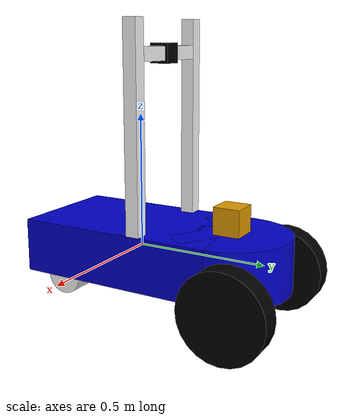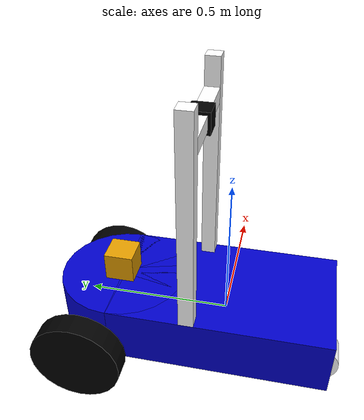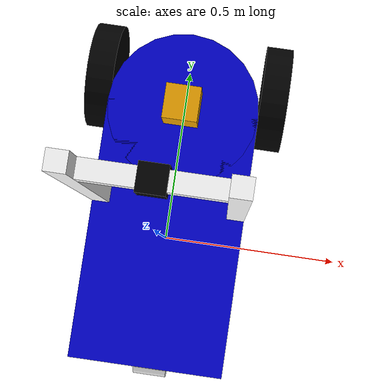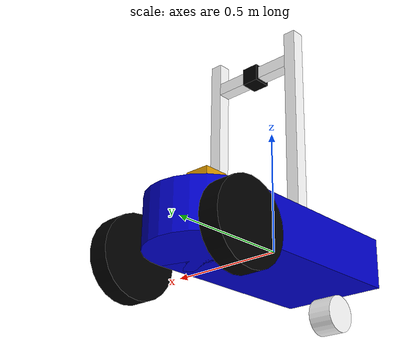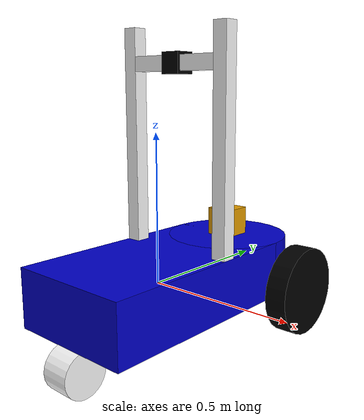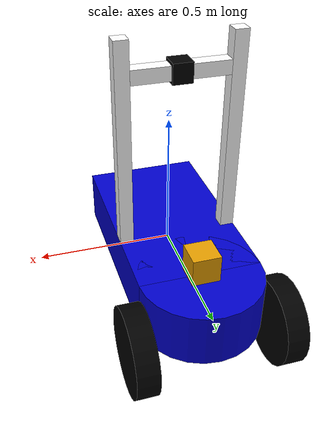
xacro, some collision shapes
<?xml version="1.0"?>
<robot name="Minotaur" xmlns:xacro="http://www.ros.org/wiki/xacro">

	<xacro:include filename="$(find ugv_bot)/ugvbot_description/ugvbot.gazebo" />

	<material name="blue">
		<color rgba="0 0 0.8 1"/>
	</material>
	<material name="black">
		<color rgba="0 0 0 1"/>
	</material>
	<material name="white">
		<color rgba="1 1 1 1"/>
	</material>

	<link name="base_link">
		<visual>
			<geometry>
				<box size="0.44 0.75 0.2"/>
			</geometry>
			<material name="blue"/>
		</visual>
		<collision>
			<geometry>
				<box size="0.44 0.75 0.2"/>
			</geometry>
		</collision>
		<inertial>
			<mass value="10.0"/>
			<origin xyz="0.0 0 0.1" rpy=" 0 0 0"/>
		         <inertia
			  ixx="0.5" ixy="0" ixz="0"
			  iyy="1.0" iyz="0"
			  izz="0.1"
		      />
		</inertial>
	</link>

	<link name="front_end">
		<visual>
			<geometry>
				<cylinder length="0.2" radius="0.22"/>
			</geometry>
			<material name="blue"/>
			<origin xyz="0 0 0"/>
		</visual>
		<collision>
			<geometry>
				<cylinder length="0.2" radius="0.22"/>
			</geometry>
		</collision>
		<inertial>
			<mass value="1.0"/>
			<origin xyz="0.0 0 0.1" rpy=" 0 0 0"/>
		         <inertia
			  ixx="0.5" ixy="0" ixz="0"
			  iyy="1.0" iyz="0"
			  izz="0.1"
		      />
		</inertial>
	</link>

	<joint name="front_base_joint" type="fixed">
		<parent link="base_link"/>
		<child link="front_end"/>
		<origin xyz="0 0.375 0"/>
	</joint>

	<link name="right_wheel">
		<visual>
			<origin rpy="0 1.5708 0" xyz="0 0 0"/>
			<geometry>
				<cylinder length="0.08" radius="0.16"/>
			</geometry>
			<material name="black"/>
		</visual>
		<collision>
			<origin rpy="0 1.5708 0" xyz="0 0 0"/>
			<geometry>
				<cylinder length="0.08" radius="0.16"/>
			</geometry>
			<contact_coefficients mu="1.0" kp="0.01" kd="0.01"/>
		</collision>
		<inertial>
			<mass value="5"/>
			<origin xyz="0.0 0 0.1" rpy=" 0 0 0"/>
		        <inertia
			ixx="1.0" ixy="0.0" ixz="0.0"
			iyy="1.0" iyz="0.0"
			izz="1.0"/>
		</inertial>
	</link>

	<joint name="right_wheel_joint" type="continuous">
		<parent link="front_end"/>
		<child link="right_wheel"/>
		<origin xyz="0.26 0.1 -0.09" rpy="1.5708 0 0"/>
	</joint>

	<link name="left_wheel">
		<visual>
			<origin rpy="0 1.5708 0" xyz="0 0 0"/>
			<geometry>
				<cylinder length="0.08" radius="0.16"/>
			</geometry>
			<material name="black"/>
		</visual>
		<collision>
			<origin rpy="0 1.5708 0" xyz="0 0 0"/>
			<geometry>
				<cylinder length="0.08" radius="0.16"/>
			</geometry>
		</collision>
		<inertial>
			<mass value="5"/>
			<origin xyz="0.0 0 0.1" rpy=" 0 0 0"/>
		     	<inertia
			ixx="1.0" ixy="0.0" ixz="0.0"
			iyy="1.0" iyz="0.0"
			izz="1.0"/>
		</inertial>
	</link>

	<joint name="left_wheel_joint" type="continuous">
		<parent link="front_end"/>
		<child link="left_wheel"/>
		<origin xyz="-0.26 0.1 -0.09" rpy="1.5708 0 0"/>
	</joint>

	<link name="right_mast">
		<visual>
			<geometry>
				<box size="0.05 0.05 0.74"/>
			</geometry>
			<material name="white"/>
		</visual>
		<collision>
			<geometry>
				<box size="0.05 0.05 0.74"/>
			</geometry>
		</collision>
		<inertial>
			<mass value="1"/>
			<origin xyz="0.0 0 0.1" rpy=" 0 0 0"/>
		        <inertia
			  ixx="0.5" ixy="0" ixz="0"
			  iyy="1.0" iyz="0"
			  izz="0.1"
		      />
		</inertial>
	</link>

	<link name="left_mast">
		<visual>
			<geometry>
				<box size="0.05 0.05 0.74"/>
			</geometry>
			<material name="white"/>
		</visual>
		<collision>
			<geometry>
				<box size="0.05 0.05 0.74"/>
			</geometry>
		</collision>
		<inertial>
			<mass value="1"/>
			<origin xyz="0.0 0 0.1" rpy=" 0 0 0"/>
		        <inertia
			  ixx="0.5" ixy="0" ixz="0"
			  iyy="1.0" iyz="0"
			  izz="0.1"
		      />
		</inertial>
	</link>

	<joint name="right_mast_joint" type="fixed">
		<parent link="base_link"/>
		<child link="right_mast"/>
		<origin xyz="0.195 0.1 0.47"/>
	</joint>

	<joint name="left_mast_joint" type="fixed">
		<parent link="base_link"/>
		<child link="left_mast"/>
		<origin xyz="-0.195 0.1 0.47"/>
	</joint>

	<link name="mast_link">
		<visual>
			<geometry>
				<box size="0.34 0.05 0.05"/>
				<origin xyz="0 0 0"/>
			</geometry>
			<material name="white"/>
		</visual>
		<collision>
			<geometry>
				<box size="0.34 0.05 0.05"/>
			</geometry>
		</collision>
		<inertial>
			<mass value="0.1"/>
			<origin xyz="0.0 0 0.1" rpy=" 0 0 0"/>
		        <inertia
			  ixx="1" ixy="0" ixz="0"
			  iyy="1" iyz="0"
			  izz="1"
		      />
		</inertial>
	</link>

	<joint name="left_cam_joint" type="fixed">
		<parent link="left_mast"/>
		<child link="mast_link"/>
		<origin xyz="0.195 0 0.25"/>
	</joint>

  <link name="camera">
    <visual>
      <origin xyz="0 0 0" rpy="0 0 0"/>
      <geometry>
        <box size="0.07 0.07 0.07"/>
      </geometry>
      <material name="black"/>
    </visual>
    <collision>
      <geometry>
        <box size="0.07 0.07 0.07"/>
      </geometry>
    </collision>
    <inertial>
      <mass value="0.2"/>
      <box_inertia m="0.2" x="0.07" y="0.07" z="0.07" />
      <inertia ixx="1e-6" ixy="0" ixz="0" iyy="1e-6" iyz="0" izz="1e-6" />
    </inertial>
  </link>

  <joint name="cam_joint" type="fixed">
    <axis xyz="1 0 0" />
    <parent link="mast_link"/>
    <child link="camera"/>
    <origin xyz="0 0 0" rpy="0 0 1.5708"/>
  </joint>

	<link name="hokuyo">
    <collision>
      <origin xyz="0 0 0" rpy="0 1.5708 0"/>
      <geometry>
    <box size="0.1 0.1 0.1"/>
      </geometry>
    </collision>

    <visual>
      <origin xyz="0 0 0" rpy="0 0 0"/>
      <geometry>
        <mesh filename="package://ugv_bot/ugvbot_description/hokuyo.dae"/>
      </geometry>
    </visual>

    <inertial>
      <mass value="1e-5" />
      <origin xyz="0 0 0" rpy="0 0 0"/>
      <inertia ixx="1e-6" ixy="0" ixz="0" iyy="1e-6" iyz="0" izz="1e-6" />
    </inertial>
  </link>

 <joint name="hokuyo_joint" type="fixed">
    <axis xyz="0 0 1" />
    <origin xyz="0 0 0.15" rpy="0 0 1.5708"/>
    <parent link="front_end"/>
    <child link="hokuyo"/>
  </joint>

	<link name="caster_wheel">
		<visual>
			<origin rpy="0 1.5708 0" xyz="0 0 0"/>
			<geometry>
				<cylinder length="0.1" radius="0.075"/>
			</geometry>
			<material name="white"/>
		</visual>
		<collision>
			<origin rpy="0 1.5708 0" xyz="0 0 0"/>
			<geometry>
				<cylinder length="0.1" radius="0.075"/>
			</geometry>
		</collision>
		<inertial>
			<mass value="1"/>
			<origin xyz="0.0 0 0.1" rpy=" 0 0 0"/>
		        <inertia
			ixx="0.01" ixy="0.0" ixz="0.0"
			iyy="0.01" iyz="0.0"
			izz="0.01"/>
		</inertial>
	</link>

	<joint name="caster_joint" type="continuous">
		<parent link="base_link"/>
		<child link="caster_wheel"/>
		<origin xyz="0 -0.35 -0.175" rpy="1.5708 0 0"/>
	</joint>
</robot>
